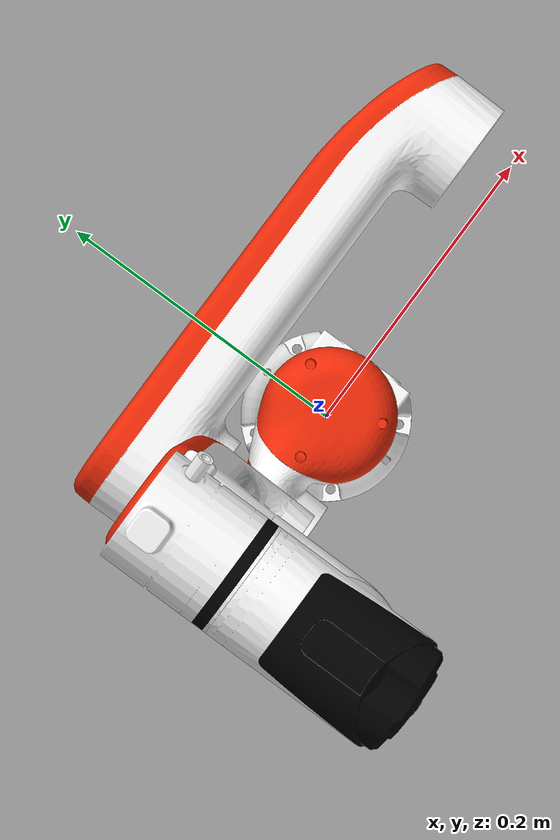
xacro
<?xml version='1.0' encoding='utf-8'?>
<robot name="rm_eco65_description">
  <link name="baselink">
    <inertial>
      <origin rpy="0 0 0" xyz="0.00059982 -9.2932E-05 0.043301" />
      <mass value="0.61127" />
      <inertia ixx="0.00080212" ixy="3.0281E-06" ixz="-2.8747E-05" iyy="0.00080502" iyz="1.9749E-06" izz="0.00066167" />
    </inertial>
    <collision>
      <origin rpy="0 0 0" xyz="0 0 0" />
      <geometry>
        <mesh filename="package://rm_description/meshes/rm_eco65_arm/baselink.STL" />
      </geometry>
    </collision>
    <visual>
      <origin xyz="0 0 0" rpy="0 0 0" />
      <geometry>
        <mesh filename="package://rm_description/meshes/dae/base/base_v1.0.dae" />
      </geometry>
    </visual>
  </link>
  <link name="Link1">
    <inertial>
      <origin rpy="0 0 0" xyz="-0.022858 -2.0784E-06 -0.013658" />
      <mass value="0.74247" />
      <inertia ixx="0.00081398" ixy="-1.9024E-05" ixz="0.00022746" iyy="0.001848" iyz="2.0444E-06" izz="0.0015286" />
    </inertial>
    <collision>
      <origin rpy="0 0 0" xyz="0 0 0" />
      <geometry>
        <mesh filename="package://rm_description/meshes/rm_eco65_arm/Link_1.STL" />
      </geometry>
    </collision>
    <visual>
      <origin xyz="0 0 0" rpy="0 0 0" />
      <geometry>
        <mesh filename="package://rm_description/meshes/dae/eco65/link_1.dae" />
      </geometry>
    </visual>
  </link>
  <joint name="joint1" type="revolute">
    <origin rpy="0 0 0" xyz="0 0 0.1625" />
    <parent link="baselink" />
    <child link="Link1" />
    <axis xyz="0 0 1" />
    <limit effort="100" lower="-3.1067" upper="3.1067" velocity="3.14" />
  </joint>
  <link name="Link2">
    <inertial>
      <origin rpy="0 0 0" xyz="-1.6049E-06 0.10336 0.067332" />
      <mass value="1.3502" />
      <inertia ixx="0.012821" ixy="-7.2979E-08" ixz="1.1499E-08" iyy="0.0011237" iyz="-0.00033755" izz="0.012933" />
    </inertial>
    <collision>
      <origin rpy="0 0 0" xyz="0 0 0" />
      <geometry>
        <mesh filename="package://rm_description/meshes/rm_eco65_arm/Link_2.STL" />
      </geometry>
    </collision>
    <visual>
      <origin xyz="0 0 0" rpy="0 0 0" />
      <geometry>
        <mesh filename="package://rm_description/meshes/dae/eco65/link_2.dae" />
      </geometry>
    </visual>
  </link>
  <joint name="joint2" type="revolute">
    <origin rpy="1.5708 0 0" xyz="-0.086 0 0" />
    <parent link="Link1" />
    <child link="Link2" />
    <axis xyz="0 0 -1" />
    <limit effort="100" lower="-3.1067" upper="2.3562" velocity="3.14" />
  </joint>
  <link name="Link3">
    <inertial>
      <origin rpy="0 0 0" xyz="0.10374 7.0495E-07 0.018599" />
      <mass value="1.0422" />
      <inertia ixx="0.00084115" ixy="-2.2514E-08" ixz="-0.00068613" iyy="0.0094046" iyz="-3.3287E-09" izz="0.0092482" />
    </inertial>
    <collision>
      <origin rpy="0 0 0" xyz="0 0 0" />
      <geometry>
        <mesh filename="package://rm_description/meshes/rm_eco65_arm/Link_3.STL" />
      </geometry>
    </collision>
    <visual>
      <origin xyz="0 0 0" rpy="0 0 0" />
      <geometry>
        <mesh filename="package://rm_description/meshes/dae/eco65/link_3.dae" />
      </geometry>
    </visual>
  </link>
  <joint name="joint3" type="revolute">
    <origin rpy="3.1416 0 1.5708" xyz="0 0.26 0" />
    <parent link="Link2" />
    <child link="Link3" />
    <axis xyz="0 0 1" />
    <limit effort="100" lower="-2.7925" upper="2.5307" velocity="3.92" />
  </joint>
  <link name="Link4">
    <inertial>
      <origin rpy="0 0 0" xyz="-0.0069819 -0.016328 0.0067416" />
      <mass value="0.27383" />
      <inertia ixx="0.00024751" ixy="-5.6849E-09" ixz="5.4838E-10" iyy="0.00017648" iyz="-2.8552E-05" izz="0.00019295" />
    </inertial>
    <collision>
      <origin rpy="0 0 0" xyz="0 0 0" />
      <geometry>
        <mesh filename="package://rm_description/meshes/rm_eco65_arm/Link_4.STL" />
      </geometry>
    </collision>
    <visual>
      <origin xyz="0 0 0" rpy="0 0 0" />
      <geometry>
        <mesh filename="package://rm_description/meshes/dae/eco65/link_4.dae" />
      </geometry>
    </visual>
  </link>
  <joint name="joint4" type="revolute">
    <origin rpy="0 0 1.5708" xyz="0.24 0 -0.05888" />
    <parent link="Link3" />
    <child link="Link4" />
    <axis xyz="0 0 1" />
    <limit effort="100" lower="-3.1067" upper="3.1067" velocity="3.92" />
  </joint>
  <link name="Link5">
    <inertial>
      <origin rpy="0 0 0" xyz="-0.00040425 0.0066328 -0.012475" />
      <mass value="0.27794" />
      <inertia ixx="0.00024751" ixy="-5.6849E-09" ixz="5.4838E-10" iyy="0.00017648" iyz="-2.8552E-05" izz="0.00019295" />
    </inertial>
    <collision>
      <origin rpy="0 0 0" xyz="0 0 0" />
      <geometry>
        <mesh filename="package://rm_description/meshes/rm_eco65_arm/Link_5.STL" />
      </geometry>
    </collision>
    <visual>
      <origin xyz="0 0 0" rpy="0 0 0" />
      <geometry>
        <mesh filename="package://rm_description/meshes/dae/eco65/link_5.dae" />
      </geometry>
    </visual>
  </link>
  <joint name="joint5" type="revolute">
    <origin rpy="1.5708 0 0" xyz="0.00040486 -0.10983 0" />
    <parent link="Link4" />
    <child link="Link5" />
    <axis xyz="0 0 1" />
    <limit effort="100" lower="-3.1067" upper="3.1067" velocity="3.92" />
  </joint>
  <link name="Link6">
    <inertial>
      <origin rpy="0 0 0" xyz="0.000342343794440939 -0.000189420093943737 -0.0285766702366254" />
      <mass value="0.14611108984048" />
      <inertia ixx="7.05928109974802E-05" ixy="-1.19201783223218E-06" ixz="-8.08327801418456E-07" iyy="6.9259426871958E-05" iyz="4.34362652271675E-07" izz="6.18079595264477E-05" />
    </inertial>
    <collision>
      <origin rpy="0 0 0" xyz="0 0 0" />
      <geometry>
        <mesh filename="package://rm_description/meshes/rm_eco65_arm/Link6_6f.STL" />
      </geometry>
    </collision>
    <visual>
      <origin xyz="0 0 0" rpy="0 0 0" />
      <geometry>
        <mesh filename="package://rm_description/meshes/dae/eco65/link6_6fi.dae" />
      </geometry>
    </visual>
  </link>
  <joint name="joint6" type="revolute">
    <origin rpy="-1.5708 0 0" xyz="0 0.108 0" />
    <parent link="Link5" />
    <child link="Link6" />
    <axis xyz="-3.5522E-05 0 -1" />
    <limit effort="100" lower="-2.96555" upper="2.96555" velocity="1" />
  </joint>
</robot>
